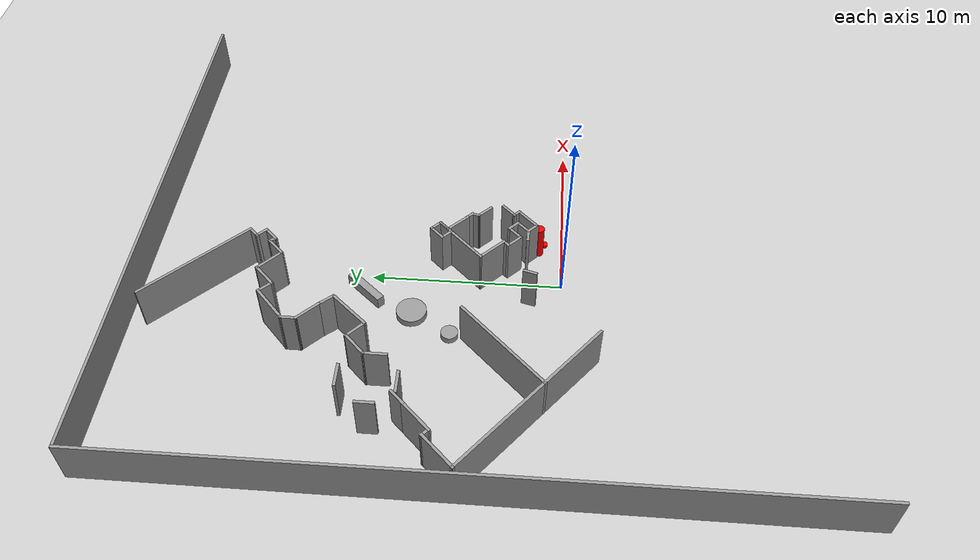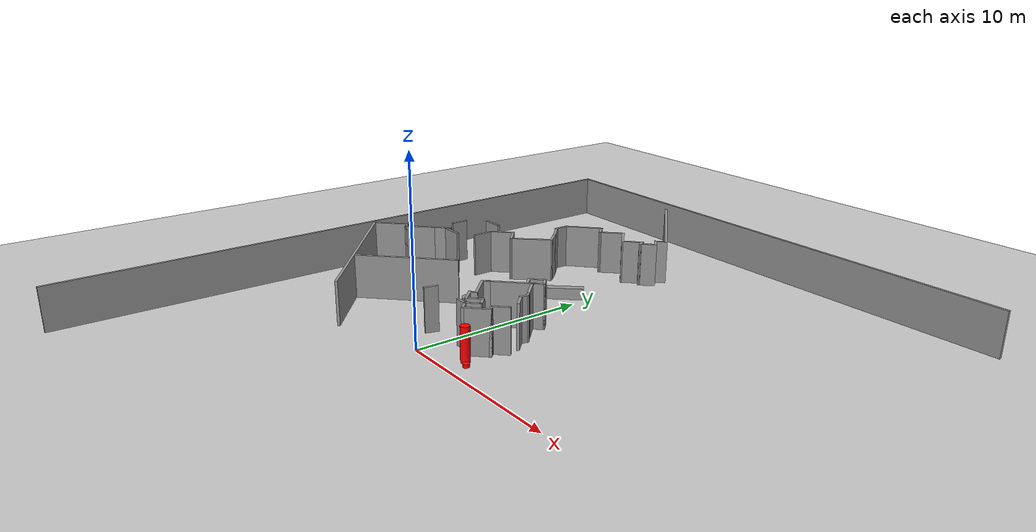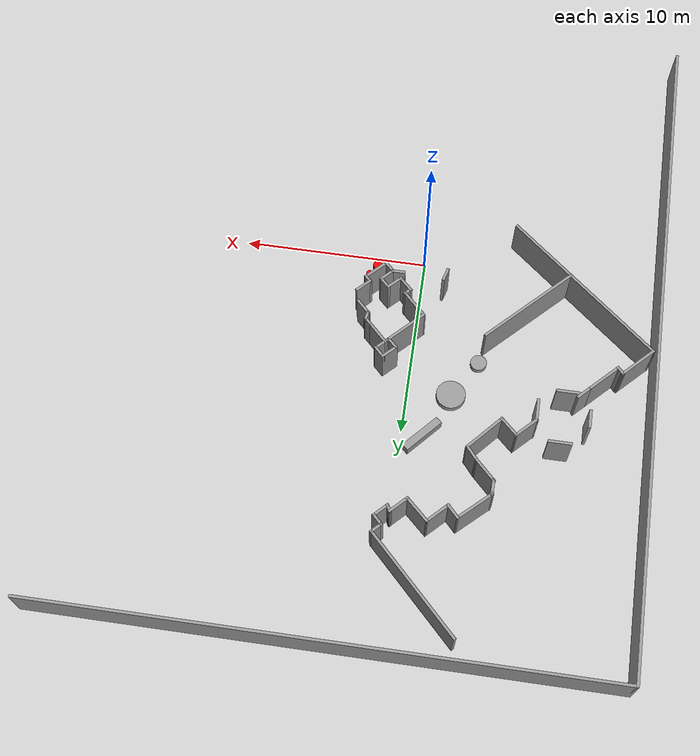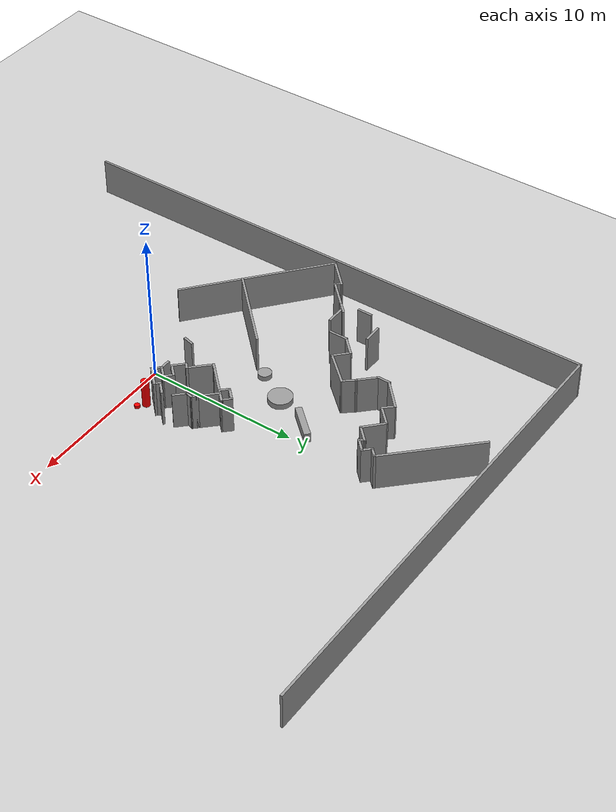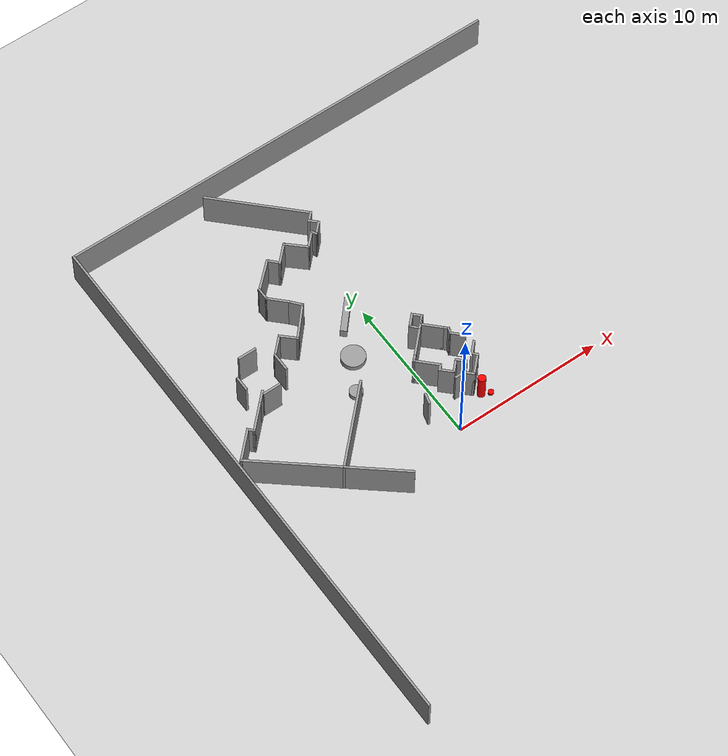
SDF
<sdf version="1.7">
 <world name="default">
  <model name="ground_plane">
   <static>1</static>
   <link name="link">
    <collision name="collision">
     <geometry><plane><normal>0 0 1</normal><size>100 100</size></plane></geometry>
     <surface>
      <contact><collide_bitmask>65535</collide_bitmask></contact>
      <friction><ode><mu>100</mu><mu2>50</mu2></ode></friction>
     </surface>
    </collision>
    <visual name="visual">
     <cast_shadows>0</cast_shadows>
     <geometry><plane><normal>0 0 1</normal><size>100 100</size></plane></geometry>
     <material>
      <script><uri>file://media/materials/scripts/gazebo.material</uri><name>Gazebo/Grey</name></script>
      <ambient>0.45 0.45 0.45 1</ambient>
     </material>
    </visual>
   </link>
  </model>
  <model name="grit_v2">
   <pose>2.3598 3.87752 0.097164 0 -0 0</pose>
   <link name="Wall_1">
    <collision name="Wall_1_Collision">
     <geometry><box><size>36.5 0.15 2.5</size></box></geometry>
     <pose>0 0 1.25 0 -0 0</pose>
    </collision>
    <visual name="Wall_1_Visual">
     <pose>0 0 1.25 0 -0 0</pose>
     <geometry><box><size>36.5 0.15 2.5</size></box></geometry>
     <material>
      <script><uri>file://media/materials/scripts/gazebo.material</uri><name>Gazebo/Grey</name></script>
      <ambient>0.15 0.15 0.15 1</ambient>
     </material>
     <meta><layer>0</layer></meta>
    </visual>
    <pose>-15.2099 0 0 0 -0 1.5708</pose>
   </link>
   <link name="Wall_100">
    <collision name="Wall_100_Collision">
     <geometry><box><size>0.467184 0.15 2.5</size></box></geometry>
     <pose>0 0 1.25 0 -0 0</pose>
    </collision>
    <visual name="Wall_100_Visual">
     <pose>0 0 1.25 0 -0 0</pose>
     <geometry><box><size>0.467184 0.15 2.5</size></box></geometry>
     <material>
      <script><uri>file://media/materials/scripts/gazebo.material</uri><name>Gazebo/Grey</name></script>
      <ambient>0.15 0.15 0.15 1</ambient>
     </material>
     <meta><layer>0</layer></meta>
    </visual>
    <pose>-2.38111 11.1848 0 0 -0 2.06748</pose>
   </link>
   <link name="Wall_102">
    <collision name="Wall_102_Collision">
     <geometry><box><size>1.25 0.15 2.5</size></box></geometry>
     <pose>0 0 1.25 0 -0 0</pose>
    </collision>
    <visual name="Wall_102_Visual">
     <pose>0 0 1.25 0 -0 0</pose>
     <geometry><box><size>1.25 0.15 2.5</size></box></geometry>
     <material>
      <script><uri>file://media/materials/scripts/gazebo.material</uri><name>Gazebo/Grey</name></script>
      <ambient>0.15 0.15 0.15 1</ambient>
     </material>
     <meta><layer>0</layer></meta>
    </visual>
    <pose>-2.84559 10.9354 0 0 -0 0.785398</pose>
   </link>
   <link name="Wall_104">
    <collision name="Wall_104_Collision">
     <geometry><box><size>0.75 0.15 2.5</size></box></geometry>
     <pose>0 0 1.25 0 -0 0</pose>
    </collision>
    <visual name="Wall_104_Visual">
     <pose>0 0 1.25 0 -0 0</pose>
     <geometry><box><size>0.75 0.15 2.5</size></box></geometry>
     <material>
      <script><uri>file://media/materials/scripts/gazebo.material</uri><name>Gazebo/Grey</name></script>
      <ambient>0.15 0.15 0.15 1</ambient>
     </material>
     <meta><layer>0</layer></meta>
    </visual>
    <pose>-1.91663 11.8586 0 0 -0 2.35619</pose>
   </link>
   <link name="Wall_105">
    <collision name="Wall_105_Collision">
     <geometry><box><size>0.75 0.15 2.5</size></box></geometry>
     <pose>0 0 1.25 0 -0 0</pose>
    </collision>
    <visual name="Wall_105_Visual">
     <pose>0 0 1.25 0 -0 0</pose>
     <geometry><box><size>0.75 0.15 2.5</size></box></geometry>
     <material>
      <script><uri>file://media/materials/scripts/gazebo.material</uri><name>Gazebo/Grey</name></script>
      <ambient>0.15 0.15 0.15 1</ambient>
     </material>
     <meta><layer>0</layer></meta>
    </visual>
    <pose>-1.91663 12.2828 0 0 -0 0.785398</pose>
   </link>
   <link name="Wall_106">
    <collision name="Wall_106_Collision">
     <geometry><box><size>6.75 0.15 2.5</size></box></geometry>
     <pose>0 0 1.25 0 -0 0</pose>
    </collision>
    <visual name="Wall_106_Visual">
     <pose>0 0 1.25 0 -0 0</pose>
     <geometry><box><size>6.75 0.15 2.5</size></box></geometry>
     <material>
      <script><uri>file://media/materials/scripts/gazebo.material</uri><name>Gazebo/Grey</name></script>
      <ambient>0.15 0.15 0.15 1</ambient>
     </material>
     <meta><layer>0</layer></meta>
    </visual>
    <pose>-4.03795 14.8284 0 0 -0 2.35619</pose>
   </link>
   <link name="Wall_126">
    <collision name="Wall_126_Collision">
     <geometry><box><size>0.5 0.15 2.5</size></box></geometry>
     <pose>0 0 1.25 0 -0 0</pose>
    </collision>
    <visual name="Wall_126_Visual">
     <pose>0 0 1.25 0 -0 0</pose>
     <geometry><box><size>0.5 0.15 2.5</size></box></geometry>
     <material>
      <script><uri>file://media/materials/scripts/gazebo.material</uri><name>Gazebo/Grey</name></script>
      <ambient>0.15 0.15 0.15 1</ambient>
     </material>
     <meta><layer>0</layer></meta>
    </visual>
    <pose>-2.63002 0.497043 0 0 -0 -2.35619</pose>
   </link>
   <link name="Wall_127">
    <collision name="Wall_127_Collision">
     <geometry><box><size>1.75 0.15 2.5</size></box></geometry>
     <pose>0 0 1.25 0 -0 0</pose>
    </collision>
    <visual name="Wall_127_Visual">
     <pose>0 0 1.25 0 -0 0</pose>
     <geometry><box><size>1.75 0.15 2.5</size></box></geometry>
     <material>
      <script><uri>file://media/materials/scripts/gazebo.material</uri><name>Gazebo/Grey</name></script>
      <ambient>0.15 0.15 0.15 1</ambient>
     </material>
     <meta><layer>0</layer></meta>
    </visual>
    <pose>-2.18808 -0.192386 0 0 -0 -0.785398</pose>
   </link>
   <link name="Wall_128">
    <collision name="Wall_128_Collision">
     <geometry><box><size>0.5 0.15 2.5</size></box></geometry>
     <pose>0 0 1.25 0 -0 0</pose>
    </collision>
    <visual name="Wall_128_Visual">
     <pose>0 0 1.25 0 -0 0</pose>
     <geometry><box><size>0.5 0.15 2.5</size></box></geometry>
     <material>
      <script><uri>file://media/materials/scripts/gazebo.material</uri><name>Gazebo/Grey</name></script>
      <ambient>0.15 0.15 0.15 1</ambient>
     </material>
     <meta><layer>0</layer></meta>
    </visual>
    <pose>-1.74613 -0.881815 0 0 -0 -2.35619</pose>
   </link>
   <link name="Wall_129">
    <collision name="Wall_129_Collision">
     <geometry><box><size>1 0.15 2.5</size></box></geometry>
     <pose>0 0 1.25 0 -0 0</pose>
    </collision>
    <visual name="Wall_129_Visual">
     <pose>0 0 1.25 0 -0 0</pose>
     <geometry><box><size>1 0.15 2.5</size></box></geometry>
     <material>
      <script><uri>file://media/materials/scripts/gazebo.material</uri><name>Gazebo/Grey</name></script>
      <ambient>0.15 0.15 0.15 1</ambient>
     </material>
     <meta><layer>0</layer></meta>
    </visual>
    <pose>-1.56936 -1.30608 0 0 -0 -0.785398</pose>
   </link>
   <link name="Wall_130">
    <collision name="Wall_130_Collision">
     <geometry><box><size>1 0.15 2.5</size></box></geometry>
     <pose>0 0 1.25 0 -0 0</pose>
    </collision>
    <visual name="Wall_130_Visual">
     <pose>0 0 1.25 0 -0 0</pose>
     <geometry><box><size>1 0.15 2.5</size></box></geometry>
     <material>
      <script><uri>file://media/materials/scripts/gazebo.material</uri><name>Gazebo/Grey</name></script>
      <ambient>0.15 0.15 0.15 1</ambient>
     </material>
     <meta><layer>0</layer></meta>
    </visual>
    <pose>-0.968317 -1.30608 0 0 -0 0.785398</pose>
   </link>
   <link name="Wall_131">
    <collision name="Wall_131_Collision">
     <geometry><box><size>0.75 0.15 2.5</size></box></geometry>
     <pose>0 0 1.25 0 -0 0</pose>
    </collision>
    <visual name="Wall_131_Visual">
     <pose>0 0 1.25 0 -0 0</pose>
     <geometry><box><size>0.75 0.15 2.5</size></box></geometry>
     <material>
      <script><uri>file://media/materials/scripts/gazebo.material</uri><name>Gazebo/Grey</name></script>
      <ambient>0.15 0.15 0.15 1</ambient>
     </material>
     <meta><layer>0</layer></meta>
    </visual>
    <pose>-0.455665 -1.21769 0 0 -0 -0.785398</pose>
   </link>
   <link name="Wall_132">
    <collision name="Wall_132_Collision">
     <geometry><box><size>0.931571 0.15 2.5</size></box></geometry>
     <pose>0 0 1.25 0 -0 0</pose>
    </collision>
    <visual name="Wall_132_Visual">
     <pose>0 0 1.25 0 -0 0</pose>
     <geometry><box><size>0.931571 0.15 2.5</size></box></geometry>
     <material>
      <script><uri>file://media/materials/scripts/gazebo.material</uri><name>Gazebo/Grey</name></script>
      <ambient>0.15 0.15 0.15 1</ambient>
     </material>
     <meta><layer>0</layer></meta>
    </visual>
    <pose>-0.516485 -1.70948 0 0 -0 -2.34405</pose>
   </link>
   <link name="Wall_133">
    <collision name="Wall_133_Collision">
     <geometry><box><size>0.75 0.15 2.5</size></box></geometry>
     <pose>0 0 1.25 0 -0 0</pose>
    </collision>
    <visual name="Wall_133_Visual">
     <pose>0 0 1.25 0 -0 0</pose>
     <geometry><box><size>0.75 0.15 2.5</size></box></geometry>
     <material>
      <script><uri>file://media/materials/scripts/gazebo.material</uri><name>Gazebo/Grey</name></script>
      <ambient>0.15 0.15 0.15 1</ambient>
     </material>
     <meta><layer>0</layer></meta>
    </visual>
    <pose>-0.577305 -2.20128 0 0 -0 -0.785398</pose>
   </link>
   <link name="Wall_134">
    <collision name="Wall_134_Collision">
     <geometry><box><size>1.5 0.15 2.5</size></box></geometry>
     <pose>0 0 1.25 0 -0 0</pose>
    </collision>
    <visual name="Wall_134_Visual">
     <pose>0 0 1.25 0 -0 0</pose>
     <geometry><box><size>1.5 0.15 2.5</size></box></geometry>
     <material>
      <script><uri>file://media/materials/scripts/gazebo.material</uri><name>Gazebo/Grey</name></script>
      <ambient>0.15 0.15 0.15 1</ambient>
     </material>
     <meta><layer>0</layer></meta>
    </visual>
    <pose>0.112124 -1.93611 0 0 -0 0.785398</pose>
   </link>
   <link name="Wall_135">
    <collision name="Wall_135_Collision">
     <geometry><box><size>0.5 0.15 2.5</size></box></geometry>
     <pose>0 0 1.25 0 -0 0</pose>
    </collision>
    <visual name="Wall_135_Visual">
     <pose>0 0 1.25 0 -0 0</pose>
     <geometry><box><size>0.5 0.15 2.5</size></box></geometry>
     <material>
      <script><uri>file://media/materials/scripts/gazebo.material</uri><name>Gazebo/Grey</name></script>
      <ambient>0.15 0.15 0.15 1</ambient>
     </material>
     <meta><layer>0</layer></meta>
    </visual>
    <pose>0.465678 -1.33507 0 0 -0 2.35619</pose>
   </link>
   <link name="Wall_136">
    <collision name="Wall_136_Collision">
     <geometry><box><size>1 0.15 2.5</size></box></geometry>
     <pose>0 0 1.25 0 -0 0</pose>
    </collision>
    <visual name="Wall_136_Visual">
     <pose>0 0 1.25 0 -0 0</pose>
     <geometry><box><size>1 0.15 2.5</size></box></geometry>
     <material>
      <script><uri>file://media/materials/scripts/gazebo.material</uri><name>Gazebo/Grey</name></script>
      <ambient>0.15 0.15 0.15 1</ambient>
     </material>
     <meta><layer>0</layer></meta>
    </visual>
    <pose>0.642454 -0.910808 0 0 -0 0.785398</pose>
   </link>
   <link name="Wall_139">
    <collision name="Wall_139_Collision">
     <geometry><box><size>1 0.15 2.5</size></box></geometry>
     <pose>0 0 1.25 0 -0 0</pose>
    </collision>
    <visual name="Wall_139_Visual">
     <pose>0 0 1.25 0 -0 0</pose>
     <geometry><box><size>1 0.15 2.5</size></box></geometry>
     <material>
      <script><uri>file://media/materials/scripts/gazebo.material</uri><name>Gazebo/Grey</name></script>
      <ambient>0.15 0.15 0.15 1</ambient>
     </material>
     <meta><layer>0</layer></meta>
    </visual>
    <pose>0.465678 0.361984 0 0 -0 2.35619</pose>
   </link>
   <link name="Wall_140">
    <collision name="Wall_140_Collision">
     <geometry><box><size>0.5 0.15 2.5</size></box></geometry>
     <pose>0 0 1.25 0 -0 0</pose>
    </collision>
    <visual name="Wall_140_Visual">
     <pose>0 0 1.25 0 -0 0</pose>
     <geometry><box><size>0.5 0.15 2.5</size></box></geometry>
     <material>
      <script><uri>file://media/materials/scripts/gazebo.material</uri><name>Gazebo/Grey</name></script>
      <ambient>0.15 0.15 0.15 1</ambient>
     </material>
     <meta><layer>0</layer></meta>
    </visual>
    <pose>0.210451 0.831542 0 0 -0 1.309</pose>
   </link>
   <link name="Wall_141">
    <collision name="Wall_141_Collision">
     <geometry><box><size>0.5 0.15 2.5</size></box></geometry>
     <pose>0 0 1.25 0 -0 0</pose>
    </collision>
    <visual name="Wall_141_Visual">
     <pose>0 0 1.25 0 -0 0</pose>
     <geometry><box><size>0.5 0.15 2.5</size></box></geometry>
     <material>
      <script><uri>file://media/materials/scripts/gazebo.material</uri><name>Gazebo/Grey</name></script>
      <ambient>0.15 0.15 0.15 1</ambient>
     </material>
     <meta><layer>0</layer></meta>
    </visual>
    <pose>0.132 1.12432 0 0 -0 2.35619</pose>
   </link>
   <link name="Wall_142">
    <collision name="Wall_142_Collision">
     <geometry><box><size>1.5 0.15 2.5</size></box></geometry>
     <pose>0 0 1.25 0 -0 0</pose>
    </collision>
    <visual name="Wall_142_Visual">
     <pose>0 0 1.25 0 -0 0</pose>
     <geometry><box><size>1.5 0.15 2.5</size></box></geometry>
     <material>
      <script><uri>file://media/materials/scripts/gazebo.material</uri><name>Gazebo/Grey</name></script>
      <ambient>0.15 0.15 0.15 1</ambient>
     </material>
     <meta><layer>0</layer></meta>
    </visual>
    <pose>-0.469041 1.72536 0 0 -0 2.35619</pose>
   </link>
   <link name="Wall_143">
    <collision name="Wall_143_Collision">
     <geometry><box><size>0.75 0.15 2.5</size></box></geometry>
     <pose>0 0 1.25 0 -0 0</pose>
    </collision>
    <visual name="Wall_143_Visual">
     <pose>0 0 1.25 0 -0 0</pose>
     <geometry><box><size>0.75 0.15 2.5</size></box></geometry>
     <material>
      <script><uri>file://media/materials/scripts/gazebo.material</uri><name>Gazebo/Grey</name></script>
      <ambient>0.15 0.15 0.15 1</ambient>
     </material>
     <meta><layer>0</layer></meta>
    </visual>
    <pose>-0.734206 2.41479 0 0 -0 0.785398</pose>
   </link>
   <link name="Wall_144">
    <collision name="Wall_144_Collision">
     <geometry><box><size>0.75 0.15 2.5</size></box></geometry>
     <pose>0 0 1.25 0 -0 0</pose>
    </collision>
    <visual name="Wall_144_Visual">
     <pose>0 0 1.25 0 -0 0</pose>
     <geometry><box><size>0.75 0.15 2.5</size></box></geometry>
     <material>
      <script><uri>file://media/materials/scripts/gazebo.material</uri><name>Gazebo/Grey</name></script>
      <ambient>0.15 0.15 0.15 1</ambient>
     </material>
     <meta><layer>0</layer></meta>
    </visual>
    <pose>-0.734206 2.83906 0 0 -0 2.35619</pose>
   </link>
   <link name="Wall_145">
    <collision name="Wall_145_Collision">
     <geometry><box><size>1 0.15 2.5</size></box></geometry>
     <pose>0 0 1.25 0 -0 0</pose>
    </collision>
    <visual name="Wall_145_Visual">
     <pose>0 0 1.25 0 -0 0</pose>
     <geometry><box><size>1 0.15 2.5</size></box></geometry>
     <material>
      <script><uri>file://media/materials/scripts/gazebo.material</uri><name>Gazebo/Grey</name></script>
      <ambient>0.15 0.15 0.15 1</ambient>
     </material>
     <meta><layer>0</layer></meta>
    </visual>
    <pose>-1.24686 2.75067 0 0 -0 -2.35619</pose>
   </link>
   <link name="Wall_146">
    <collision name="Wall_146_Collision">
     <geometry><box><size>0.75 0.15 2.5</size></box></geometry>
     <pose>0 0 1.25 0 -0 0</pose>
    </collision>
    <visual name="Wall_146_Visual">
     <pose>0 0 1.25 0 -0 0</pose>
     <geometry><box><size>0.75 0.15 2.5</size></box></geometry>
     <material>
      <script><uri>file://media/materials/scripts/gazebo.material</uri><name>Gazebo/Grey</name></script>
      <ambient>0.15 0.15 0.15 1</ambient>
     </material>
     <meta><layer>0</layer></meta>
    </visual>
    <pose>-1.33525 2.23801 0 0 -0 -0.785398</pose>
   </link>
   <link name="Wall_147">
    <collision name="Wall_147_Collision">
     <geometry><box><size>1 0.15 2.5</size></box></geometry>
     <pose>0 0 1.25 0 -0 0</pose>
    </collision>
    <visual name="Wall_147_Visual">
     <pose>0 0 1.25 0 -0 0</pose>
     <geometry><box><size>1 0.15 2.5</size></box></geometry>
     <material>
      <script><uri>file://media/materials/scripts/gazebo.material</uri><name>Gazebo/Grey</name></script>
      <ambient>0.15 0.15 0.15 1</ambient>
     </material>
     <meta><layer>0</layer></meta>
    </visual>
    <pose>-0.822594 2.3264 0 0 -0 0.785398</pose>
   </link>
   <link name="Wall_148">
    <collision name="Wall_148_Collision">
     <geometry><box><size>3.32163 0.15 2.5</size></box></geometry>
     <pose>0 0 1.25 0 -0 0</pose>
    </collision>
    <visual name="Wall_148_Visual">
     <pose>0 0 1.25 0 -0 0</pose>
     <geometry><box><size>3.32163 0.15 2.5</size></box></geometry>
     <material>
      <script><uri>file://media/materials/scripts/gazebo.material</uri><name>Gazebo/Grey</name></script>
      <ambient>0.15 0.15 0.15 1</ambient>
     </material>
     <meta><layer>0</layer></meta>
    </visual>
    <pose>-1.63792 1.50011 0 0 -0 -2.3513</pose>
   </link>
   <link name="Wall_18">
    <collision name="Wall_18_Collision">
     <geometry><box><size>2.25 0.15 2.5</size></box></geometry>
     <pose>0 0 1.25 0 -0 0</pose>
    </collision>
    <visual name="Wall_18_Visual">
     <pose>0 0 1.25 0 -0 0</pose>
     <geometry><box><size>2.25 0.15 2.5</size></box></geometry>
     <material>
      <script><uri>file://media/materials/scripts/gazebo.material</uri><name>Gazebo/Grey</name></script>
      <ambient>0.15 0.15 0.15 1</ambient>
     </material>
     <meta><layer>0</layer></meta>
    </visual>
    <pose>-14.1803 1.51258 0 0 -0 -2.35619</pose>
   </link>
   <link name="Wall_19">
    <collision name="Wall_19_Collision">
     <geometry><box><size>10.2472 0.15 2.5</size></box></geometry>
     <pose>0 0 1.25 0 -0 0</pose>
    </collision>
    <visual name="Wall_19_Visual">
     <pose>0 0 1.25 0 -0 0</pose>
     <geometry><box><size>10.2472 0.15 2.5</size></box></geometry>
     <material>
      <script><uri>file://media/materials/scripts/gazebo.material</uri><name>Gazebo/Grey</name></script>
      <ambient>0.15 0.15 0.15 1</ambient>
     </material>
     <meta><layer>0</layer></meta>
    </visual>
    <pose>-11.0351 -2.44585 0 0 -0 -0.691883</pose>
   </link>
   <link name="Wall_2">
    <collision name="Wall_2_Collision">
     <geometry><box><size>30.5 0.15 2.5</size></box></geometry>
     <pose>0 0 1.25 0 -0 0</pose>
    </collision>
    <visual name="Wall_2_Visual">
     <pose>0 0 1.25 0 -0 0</pose>
     <geometry><box><size>30.5 0.15 2.5</size></box></geometry>
     <material>
      <script><uri>file://media/materials/scripts/gazebo.material</uri><name>Gazebo/Grey</name></script>
      <ambient>0.15 0.15 0.15 1</ambient>
     </material>
     <meta><layer>0</layer></meta>
    </visual>
    <pose>-0.034886 18.175 0 0 -0 0</pose>
   </link>
   <link name="Wall_21">
    <collision name="Wall_21_Collision">
     <geometry><box><size>2 0.15 2.5</size></box></geometry>
     <pose>0 0 1.25 0 -0 0</pose>
    </collision>
    <visual name="Wall_21_Visual">
     <pose>0 0 1.25 0 -0 0</pose>
     <geometry><box><size>2 0.15 2.5</size></box></geometry>
     <material>
      <script><uri>file://media/materials/scripts/gazebo.material</uri><name>Gazebo/Grey</name></script>
      <ambient>0.15 0.15 0.15 1</ambient>
     </material>
     <meta><layer>0</layer></meta>
    </visual>
    <pose>-12.5121 2.62384 0 0 -0 0.785398</pose>
   </link>
   <link name="Wall_24">
    <collision name="Wall_24_Collision">
     <geometry><box><size>0.543967 0.15 2.5</size></box></geometry>
     <pose>0 0 1.25 0 -0 0</pose>
    </collision>
    <visual name="Wall_24_Visual">
     <pose>0 0 1.25 0 -0 0</pose>
     <geometry><box><size>0.543967 0.15 2.5</size></box></geometry>
     <material>
      <script><uri>file://media/materials/scripts/gazebo.material</uri><name>Gazebo/Grey</name></script>
      <ambient>0.15 0.15 0.15 1</ambient>
     </material>
     <meta><layer>0</layer></meta>
    </visual>
    <pose>-13.302 2.1124 0 0 -0 -0.809753</pose>
   </link>
   <link name="Wall_26">
    <collision name="Wall_26_Collision">
     <geometry><box><size>6 0.15 2.5</size></box></geometry>
     <pose>0 0 1.25 0 -0 0</pose>
    </collision>
    <visual name="Wall_26_Visual">
     <pose>0 0 1.25 0 -0 0</pose>
     <geometry><box><size>6 0.15 2.5</size></box></geometry>
     <material>
      <script><uri>file://media/materials/scripts/gazebo.material</uri><name>Gazebo/Grey</name></script>
      <ambient>0.15 0.15 0.15 1</ambient>
     </material>
     <meta><layer>0</layer></meta>
    </visual>
    <pose>-8.21963 -1.00495 0 0 -0 -2.35619</pose>
   </link>
   <link name="Wall_28">
    <collision name="Wall_28_Collision">
     <geometry><box><size>0.75 0.15 2.5</size></box></geometry>
     <pose>0 0 1.25 0 -0 0</pose>
    </collision>
    <visual name="Wall_28_Visual">
     <pose>0 0 1.25 0 -0 0</pose>
     <geometry><box><size>0.75 0.15 2.5</size></box></geometry>
     <material>
      <script><uri>file://media/materials/scripts/gazebo.material</uri><name>Gazebo/Grey</name></script>
      <ambient>0.15 0.15 0.15 1</ambient>
     </material>
     <meta><layer>0</layer></meta>
    </visual>
    <pose>-3.62179 -2.17937 0 0 -0 1.309</pose>
   </link>
   <link name="Wall_30">
    <collision name="Wall_30_Collision">
     <geometry><box><size>0.75 0.15 2.5</size></box></geometry>
     <pose>0 0 1.25 0 -0 0</pose>
    </collision>
    <visual name="Wall_30_Visual">
     <pose>0 0 1.25 0 -0 0</pose>
     <geometry><box><size>0.75 0.15 2.5</size></box></geometry>
     <material>
      <script><uri>file://media/materials/scripts/gazebo.material</uri><name>Gazebo/Grey</name></script>
      <ambient>0.15 0.15 0.15 1</ambient>
     </material>
     <meta><layer>0</layer></meta>
    </visual>
    <pose>-1.08944 -1.98915 0 0 -0 0</pose>
   </link>
   <link name="Wall_69">
    <collision name="Wall_69_Collision">
     <geometry><box><size>1 0.15 2.5</size></box></geometry>
     <pose>0 0 1.25 0 -0 0</pose>
    </collision>
    <visual name="Wall_69_Visual">
     <pose>0 0 1.25 0 -0 0</pose>
     <geometry><box><size>1 0.15 2.5</size></box></geometry>
     <material>
      <script><uri>file://media/materials/scripts/gazebo.material</uri><name>Gazebo/Grey</name></script>
      <ambient>0.15 0.15 0.15 1</ambient>
     </material>
     <meta><layer>0</layer></meta>
    </visual>
    <pose>-11.5575 3.57843 0 0 -0 0.785398</pose>
   </link>
   <link name="Wall_71">
    <collision name="Wall_71_Collision">
     <geometry><box><size>1.25 0.15 2.5</size></box></geometry>
     <pose>0 0 1.25 0 -0 0</pose>
    </collision>
    <visual name="Wall_71_Visual">
     <pose>0 0 1.25 0 -0 0</pose>
     <geometry><box><size>1.25 0.15 2.5</size></box></geometry>
     <material>
      <script><uri>file://media/materials/scripts/gazebo.material</uri><name>Gazebo/Grey</name></script>
      <ambient>0.15 0.15 0.15 1</ambient>
     </material>
     <meta><layer>0</layer></meta>
    </visual>
    <pose>-10.7111 3.68143 0 0 -0 3.14159</pose>
   </link>
   <link name="Wall_73">
    <collision name="Wall_73_Collision">
     <geometry><box><size>1.25 0.15 2.5</size></box></geometry>
     <pose>0 0 1.25 0 -0 0</pose>
    </collision>
    <visual name="Wall_73_Visual">
     <pose>0 0 1.25 0 -0 0</pose>
     <geometry><box><size>1.25 0.15 2.5</size></box></geometry>
     <material>
      <script><uri>file://media/materials/scripts/gazebo.material</uri><name>Gazebo/Grey</name></script>
      <ambient>0.15 0.15 0.15 1</ambient>
     </material>
     <meta><layer>0</layer></meta>
    </visual>
    <pose>-9.23587 4.91529 0 0 -0 1.5708</pose>
   </link>
   <link name="Wall_75">
    <collision name="Wall_75_Collision">
     <geometry><box><size>1 0.15 2.5</size></box></geometry>
     <pose>0 0 1.25 0 -0 0</pose>
    </collision>
    <visual name="Wall_75_Visual">
     <pose>0 0 1.25 0 -0 0</pose>
     <geometry><box><size>1 0.15 2.5</size></box></geometry>
     <material>
      <script><uri>file://media/materials/scripts/gazebo.material</uri><name>Gazebo/Grey</name></script>
      <ambient>0.15 0.15 0.15 1</ambient>
     </material>
     <meta><layer>0</layer></meta>
    </visual>
    <pose>-11.9512 5.01154 0 0 -0 1.5708</pose>
   </link>
   <link name="Wall_77">
    <collision name="Wall_77_Collision">
     <geometry><box><size>1.25 0.15 2.5</size></box></geometry>
     <pose>0 0 1.25 0 -0 0</pose>
    </collision>
    <visual name="Wall_77_Visual">
     <pose>0 0 1.25 0 -0 0</pose>
     <geometry><box><size>1.25 0.15 2.5</size></box></geometry>
     <material>
      <script><uri>file://media/materials/scripts/gazebo.material</uri><name>Gazebo/Grey</name></script>
      <ambient>0.15 0.15 0.15 1</ambient>
     </material>
     <meta><layer>0</layer></meta>
    </visual>
    <pose>-10.5363 6.51744 0 0 -0 0</pose>
   </link>
   <link name="Wall_79">
    <collision name="Wall_79_Collision">
     <geometry><box><size>1.5 0.15 2.5</size></box></geometry>
     <pose>0 0 1.25 0 -0 0</pose>
    </collision>
    <visual name="Wall_79_Visual">
     <pose>0 0 1.25 0 -0 0</pose>
     <geometry><box><size>1.5 0.15 2.5</size></box></geometry>
     <material>
      <script><uri>file://media/materials/scripts/gazebo.material</uri><name>Gazebo/Grey</name></script>
      <ambient>0.15 0.15 0.15 1</ambient>
     </material>
     <meta><layer>0</layer></meta>
    </visual>
    <pose>-8.75857 5.94259 0 0 -0 0.785398</pose>
   </link>
   <link name="Wall_81">
    <collision name="Wall_81_Collision">
     <geometry><box><size>1.26967 0.15 2.5</size></box></geometry>
     <pose>0 0 1.25 0 -0 0</pose>
    </collision>
    <visual name="Wall_81_Visual">
     <pose>0 0 1.25 0 -0 0</pose>
     <geometry><box><size>1.26967 0.15 2.5</size></box></geometry>
     <material>
      <script><uri>file://media/materials/scripts/gazebo.material</uri><name>Gazebo/Grey</name></script>
      <ambient>0.15 0.15 0.15 1</ambient>
     </material>
     <meta><layer>0</layer></meta>
    </visual>
    <pose>-7.87357 6.03622 0 0 -0 2.38656</pose>
   </link>
   <link name="Wall_83">
    <collision name="Wall_83_Collision">
     <geometry><box><size>2.50019 0.15 2.5</size></box></geometry>
     <pose>0 0 1.25 0 -0 0</pose>
    </collision>
    <visual name="Wall_83_Visual">
     <pose>0 0 1.25 0 -0 0</pose>
     <geometry><box><size>2.50019 0.15 2.5</size></box></geometry>
     <material>
      <script><uri>file://media/materials/scripts/gazebo.material</uri><name>Gazebo/Grey</name></script>
      <ambient>0.15 0.15 0.15 1</ambient>
     </material>
     <meta><layer>0</layer></meta>
    </visual>
    <pose>-6.68144 6.5275 0 0 -0 -2.3017</pose>
   </link>
   <link name="Wall_85">
    <collision name="Wall_85_Collision">
     <geometry><box><size>1.5 0.15 2.5</size></box></geometry>
     <pose>0 0 1.25 0 -0 0</pose>
    </collision>
    <visual name="Wall_85_Visual">
     <pose>0 0 1.25 0 -0 0</pose>
     <geometry><box><size>1.5 0.15 2.5</size></box></geometry>
     <material>
      <script><uri>file://media/materials/scripts/gazebo.material</uri><name>Gazebo/Grey</name></script>
      <ambient>0.15 0.15 0.15 1</ambient>
     </material>
     <meta><layer>0</layer></meta>
    </visual>
    <pose>-6.92618 8.53569 0 0 -0 -0.785398</pose>
   </link>
   <link name="Wall_87">
    <collision name="Wall_87_Collision">
     <geometry><box><size>1.00723 0.15 2.5</size></box></geometry>
     <pose>0 0 1.25 0 -0 0</pose>
    </collision>
    <visual name="Wall_87_Visual">
     <pose>0 0 1.25 0 -0 0</pose>
     <geometry><box><size>1.00723 0.15 2.5</size></box></geometry>
     <material>
      <script><uri>file://media/materials/scripts/gazebo.material</uri><name>Gazebo/Grey</name></script>
      <ambient>0.15 0.15 0.15 1</ambient>
     </material>
     <meta><layer>0</layer></meta>
    </visual>
    <pose>-6.17295 7.73042 0 0 -0 2.27023</pose>
   </link>
   <link name="Wall_89">
    <collision name="Wall_89_Collision">
     <geometry><box><size>0.888679 0.15 2.5</size></box></geometry>
     <pose>0 0 1.25 0 -0 0</pose>
    </collision>
    <visual name="Wall_89_Visual">
     <pose>0 0 1.25 0 -0 0</pose>
     <geometry><box><size>0.888679 0.15 2.5</size></box></geometry>
     <material>
      <script><uri>file://media/materials/scripts/gazebo.material</uri><name>Gazebo/Grey</name></script>
      <ambient>0.15 0.15 0.15 1</ambient>
     </material>
     <meta><layer>0</layer></meta>
    </visual>
    <pose>-7.40088 9.38232 0 0 -0 -1.57783</pose>
   </link>
   <link name="Wall_91">
    <collision name="Wall_91_Collision">
     <geometry><box><size>2.27981 0.15 2.5</size></box></geometry>
     <pose>0 0 1.25 0 -0 0</pose>
    </collision>
    <visual name="Wall_91_Visual">
     <pose>0 0 1.25 0 -0 0</pose>
     <geometry><box><size>2.27981 0.15 2.5</size></box></geometry>
     <material>
      <script><uri>file://media/materials/scripts/gazebo.material</uri><name>Gazebo/Grey</name></script>
      <ambient>0.15 0.15 0.15 1</ambient>
     </material>
     <meta><layer>0</layer></meta>
    </visual>
    <pose>-6.61828 10.4667 0 0 -0 -2.39272</pose>
   </link>
   <link name="Wall_93">
    <collision name="Wall_93_Collision">
     <geometry><box><size>0.935175 0.15 2.5</size></box></geometry>
     <pose>0 0 1.25 0 -0 0</pose>
    </collision>
    <visual name="Wall_93_Visual">
     <pose>0 0 1.25 0 -0 0</pose>
     <geometry><box><size>0.935175 0.15 2.5</size></box></geometry>
     <material>
      <script><uri>file://media/materials/scripts/gazebo.material</uri><name>Gazebo/Grey</name></script>
      <ambient>0.15 0.15 0.15 1</ambient>
     </material>
     <meta><layer>0</layer></meta>
    </visual>
    <pose>-5.56828 10.9067 0 0 -0 2.32917</pose>
   </link>
   <link name="Wall_95">
    <collision name="Wall_95_Collision">
     <geometry><box><size>1.5 0.15 2.5</size></box></geometry>
     <pose>0 0 1.25 0 -0 0</pose>
    </collision>
    <visual name="Wall_95_Visual">
     <pose>0 0 1.25 0 -0 0</pose>
     <geometry><box><size>1.5 0.15 2.5</size></box></geometry>
     <material>
      <script><uri>file://media/materials/scripts/gazebo.material</uri><name>Gazebo/Grey</name></script>
      <ambient>0.15 0.15 0.15 1</ambient>
     </material>
     <meta><layer>0</layer></meta>
    </visual>
    <pose>-4.82098 11.0989 0 0 -0 0.785398</pose>
   </link>
   <link name="Wall_97">
    <collision name="Wall_97_Collision">
     <geometry><box><size>1.66353 0.15 2.5</size></box></geometry>
     <pose>0 0 1.25 0 -0 0</pose>
    </collision>
    <visual name="Wall_97_Visual">
     <pose>0 0 1.25 0 -0 0</pose>
     <geometry><box><size>1.66353 0.15 2.5</size></box></geometry>
     <material>
      <script><uri>file://media/materials/scripts/gazebo.material</uri><name>Gazebo/Grey</name></script>
      <ambient>0.15 0.15 0.15 1</ambient>
     </material>
     <meta><layer>0</layer></meta>
    </visual>
    <pose>-3.78909 11.0613 0 0 -0 2.3933</pose>
   </link>
   <link name="Wall_99">
    <collision name="Wall_99_Collision">
     <geometry><box><size>1 0.15 2.5</size></box></geometry>
     <pose>0 0 1.25 0 -0 0</pose>
    </collision>
    <visual name="Wall_99_Visual">
     <pose>0 0 1.25 0 -0 0</pose>
     <geometry><box><size>1 0.15 2.5</size></box></geometry>
     <material>
      <script><uri>file://media/materials/scripts/gazebo.material</uri><name>Gazebo/Grey</name></script>
      <ambient>0.15 0.15 0.15 1</ambient>
     </material>
     <meta><layer>0</layer></meta>
    </visual>
    <pose>-2.00502 11.3459 0 0 -0 -2.35619</pose>
   </link>
   <static>1</static>
  </model>
  <model name="unit_cylinder">
   <pose>-3.62713 5.60543 0.173931 1e-06 -1e-06 0.00514</pose>
   <link name="link">
    <inertial>
     <mass>1</mass>
     <inertia><ixx>0.145833</ixx><ixy>0</ixy><ixz>0</ixz><iyy>0.145833</iyy><iyz>0</iyz><izz>0.125</izz></inertia>
    </inertial>
    <collision name="collision">
     <geometry><cylinder><radius>0.439897</radius><length>0.347876</length></cylinder></geometry>
    </collision>
    <visual name="visual">
     <geometry><cylinder><radius>0.439897</radius><length>0.347876</length></cylinder></geometry>
     <material>
      <script><name>Gazebo/Grey</name><uri>file://media/materials/scripts/gazebo.material</uri></script>
      <ambient>0.15 0.15 0.15 1</ambient>
     </material>
    </visual>
   </link>
  </model>
  <model name="obstacle">
   <static>1</static>
   <pose>2.46637 1.27314 0.550025 0 -0 0</pose>
   <link name="body">
    <visual name="visual">
     <geometry><cylinder><radius>0.25</radius><length>2.62511</length></cylinder></geometry>
     <material><ambient>1 0 0 1</ambient><diffuse>1 0 0 1</diffuse><emissive>1 0 0 1</emissive></material>
    </visual>
    <collision name="collision">
     <geometry><cylinder><radius>0.25</radius><length>2.62511</length></cylinder></geometry>
    </collision>
   </link>
  </model>
  <model name="unit_cylinder_0">
   <pose>-2.36856 7.67119 0.194541 -4e-06 4e-06 9.4e-05</pose>
   <link name="link">
    <inertial>
     <mass>1</mass>
     <inertia><ixx>0.145833</ixx><ixy>0</ixy><ixz>0</ixz><iyy>0.145833</iyy><iyz>0</iyz><izz>0.125</izz></inertia>
    </inertial>
    <collision name="collision">
     <geometry><cylinder><radius>0.786321</radius><length>0.389089</length></cylinder></geometry>
    </collision>
    <visual name="visual">
     <geometry><cylinder><radius>0.786321</radius><length>0.389089</length></cylinder></geometry>
     <material>
      <script><name>Gazebo/Grey</name><uri>file://media/materials/scripts/gazebo.material</uri></script>
      <ambient>0.15 0.15 0.15 1</ambient>
     </material>
    </visual>
   </link>
  </model>
  <model name="unit_box">
   <pose>-1.13261 10.1894 0.328607 4.7e-05 -0 -0.730424</pose>
   <link name="link">
    <inertial>
     <mass>1</mass>
     <inertia>
      <ixx>0.166667</ixx>
      <ixy>0</ixy>
      <ixz>0</ixz>
      <iyy>0.166667</iyy>
      <iyz>0</iyz>
      <izz>0.166667</izz>
     </inertia>
    </inertial>
    <collision name="collision"><geometry><box><size>0.416961 2.37935 0.657326</size></box></geometry></collision>
    <visual name="visual">
     <geometry><box><size>0.416961 2.37935 0.657326</size></box></geometry>
     <material>
      <script><name>Gazebo/Grey</name><uri>file://media/materials/scripts/gazebo.material</uri></script>
      <ambient>0.15 0.15 0.15 1</ambient>
     </material>
    </visual>
   </link>
  </model>
  <model name="obstacle_cat">
   <static>1</static>
   <pose>2.97416 0.969028 0.076367 0 -0 0</pose>
   <link name="body">
    <visual name="visual">
     <geometry><cylinder><radius>0.18</radius><length>0.189498</length></cylinder></geometry>
     <material><ambient>1 0 0 1</ambient><diffuse>1 0 0 1</diffuse><emissive>1 0 0 1</emissive></material>
    </visual>
    <collision name="collision">
     <geometry><cylinder><radius>0.18</radius><length>0.189498</length></cylinder></geometry>
    </collision>
   </link>
  </model>
 </world>
</sdf>
